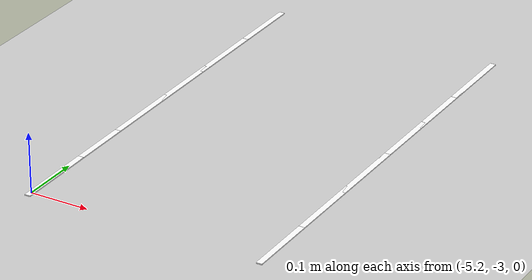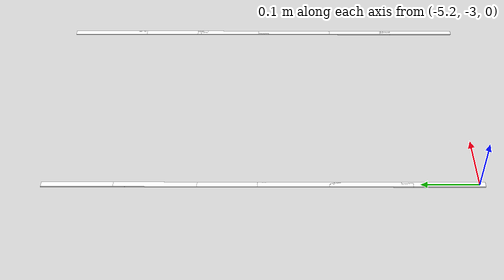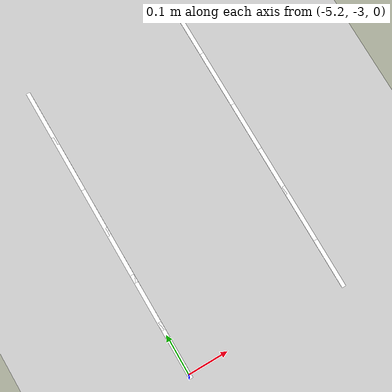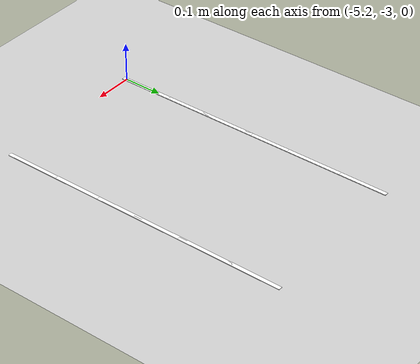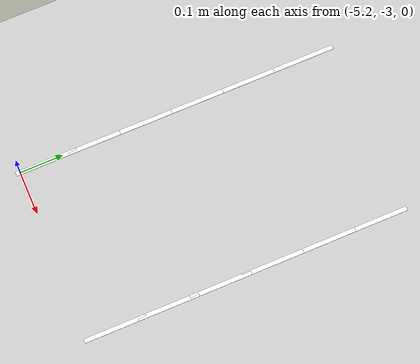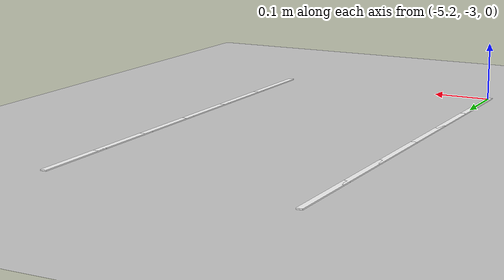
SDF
<sdf version="1.7">
 <world name="default">
  <model name="ground_plane">
   <static>1</static>
   <link name="link">
    <collision name="collision">
     <geometry><plane><normal>0 0 1</normal><size>100 100</size></plane></geometry>
     <surface>
      <contact><collide_bitmask>65535</collide_bitmask></contact>
      <friction><ode><mu>100</mu><mu2>50</mu2></ode></friction>
     </surface>
    </collision>
    <visual name="visual">
     <cast_shadows>0</cast_shadows>
     <geometry><plane><normal>0 0 1</normal><size>100 100</size></plane></geometry>
     <material>
      <script><uri>file://media/materials/scripts/gazebo.material</uri><name>Gazebo/Grey</name></script>
     </material>
    </visual>
   </link>
  </model>
  <model name="lane_line_left_343">
   <static>1</static>
   <link name="link">
    <pose>0 0 -0.004 0 -0 0</pose>
    <visual name="visual">
     <geometry><box><size>0.1424 0.01 0.01</size></box></geometry>
     <material><ambient>1 1 1 1</ambient><diffuse>1 1 1 1</diffuse></material>
    </visual>
    <collision name="collision"><geometry><box><size>0.1424 0.01 0.01</size></box></geometry></collision>
   </link>
   <pose>-4.8 -2.32653 0 0 0 -1.5708</pose>
  </model>
  <model name="lane_line_right_343">
   <static>1</static>
   <link name="link">
    <pose>0 0 -0.004 0 -0 0</pose>
    <visual name="visual">
     <geometry><box><size>0.1424 0.01 0.01</size></box></geometry>
     <material><ambient>1 1 1 1</ambient><diffuse>1 1 1 1</diffuse></material>
    </visual>
    <collision name="collision"><geometry><box><size>0.1424 0.01 0.01</size></box></geometry></collision>
   </link>
   <pose>-5.2 -2.32653 0 0 0 -1.5708</pose>
  </model>
  <model name="lane_line_left_344">
   <static>1</static>
   <link name="link">
    <pose>0 0 -0.004 0 -0 0</pose>
    <visual name="visual">
     <geometry><box><size>0.1424 0.01 0.01</size></box></geometry>
     <material><ambient>1 1 1 1</ambient><diffuse>1 1 1 1</diffuse></material>
    </visual>
    <collision name="collision"><geometry><box><size>0.1424 0.01 0.01</size></box></geometry></collision>
   </link>
   <pose>-4.8 -2.44898 0 0 0 -1.5708</pose>
  </model>
  <model name="lane_line_right_344">
   <static>1</static>
   <link name="link">
    <pose>0 0 -0.004 0 -0 0</pose>
    <visual name="visual">
     <geometry><box><size>0.1424 0.01 0.01</size></box></geometry>
     <material><ambient>1 1 1 1</ambient><diffuse>1 1 1 1</diffuse></material>
    </visual>
    <collision name="collision"><geometry><box><size>0.1424 0.01 0.01</size></box></geometry></collision>
   </link>
   <pose>-5.2 -2.44898 0 0 0 -1.5708</pose>
  </model>
  <model name="lane_line_left_345">
   <static>1</static>
   <link name="link">
    <pose>0 0 -0.004 0 -0 0</pose>
    <visual name="visual">
     <geometry><box><size>0.1424 0.01 0.01</size></box></geometry>
     <material><ambient>1 1 1 1</ambient><diffuse>1 1 1 1</diffuse></material>
    </visual>
    <collision name="collision"><geometry><box><size>0.1424 0.01 0.01</size></box></geometry></collision>
   </link>
   <pose>-4.8 -2.57143 0 0 0 -1.5708</pose>
  </model>
  <model name="lane_line_right_345">
   <static>1</static>
   <link name="link">
    <pose>0 0 -0.004 0 -0 0</pose>
    <visual name="visual">
     <geometry><box><size>0.1424 0.01 0.01</size></box></geometry>
     <material><ambient>1 1 1 1</ambient><diffuse>1 1 1 1</diffuse></material>
    </visual>
    <collision name="collision"><geometry><box><size>0.1424 0.01 0.01</size></box></geometry></collision>
   </link>
   <pose>-5.2 -2.57143 0 0 0 -1.5708</pose>
  </model>
  <model name="lane_line_left_346">
   <static>1</static>
   <link name="link">
    <pose>0 0 -0.004 0 -0 0</pose>
    <visual name="visual">
     <geometry><box><size>0.1424 0.01 0.01</size></box></geometry>
     <material><ambient>1 1 1 1</ambient><diffuse>1 1 1 1</diffuse></material>
    </visual>
    <collision name="collision"><geometry><box><size>0.1424 0.01 0.01</size></box></geometry></collision>
   </link>
   <pose>-4.8 -2.69388 0 0 0 -1.5708</pose>
  </model>
  <model name="lane_line_right_346">
   <static>1</static>
   <link name="link">
    <pose>0 0 -0.004 0 -0 0</pose>
    <visual name="visual">
     <geometry><box><size>0.1424 0.01 0.01</size></box></geometry>
     <material><ambient>1 1 1 1</ambient><diffuse>1 1 1 1</diffuse></material>
    </visual>
    <collision name="collision"><geometry><box><size>0.1424 0.01 0.01</size></box></geometry></collision>
   </link>
   <pose>-5.2 -2.69388 0 0 0 -1.5708</pose>
  </model>
  <model name="lane_line_left_347">
   <static>1</static>
   <link name="link">
    <pose>0 0 -0.004 0 -0 0</pose>
    <visual name="visual">
     <geometry><box><size>0.1424 0.01 0.01</size></box></geometry>
     <material><ambient>1 1 1 1</ambient><diffuse>1 1 1 1</diffuse></material>
    </visual>
    <collision name="collision"><geometry><box><size>0.1424 0.01 0.01</size></box></geometry></collision>
   </link>
   <pose>-4.8 -2.81633 0 0 0 -1.5708</pose>
  </model>
  <model name="lane_line_right_347">
   <static>1</static>
   <link name="link">
    <pose>0 0 -0.004 0 -0 0</pose>
    <visual name="visual">
     <geometry><box><size>0.1424 0.01 0.01</size></box></geometry>
     <material><ambient>1 1 1 1</ambient><diffuse>1 1 1 1</diffuse></material>
    </visual>
    <collision name="collision"><geometry><box><size>0.1424 0.01 0.01</size></box></geometry></collision>
   </link>
   <pose>-5.2 -2.81633 0 0 0 -1.5708</pose>
  </model>
  <model name="lane_line_left_348">
   <static>1</static>
   <link name="link">
    <pose>0 0 -0.004 0 -0 0</pose>
    <visual name="visual">
     <geometry><box><size>0.1424 0.01 0.01</size></box></geometry>
     <material><ambient>1 1 1 1</ambient><diffuse>1 1 1 1</diffuse></material>
    </visual>
    <collision name="collision"><geometry><box><size>0.1424 0.01 0.01</size></box></geometry></collision>
   </link>
   <pose>-4.8 -2.93878 0 0 0 -1.5708</pose>
  </model>
  <model name="lane_line_right_348">
   <static>1</static>
   <link name="link">
    <pose>0 0 -0.004 0 -0 0</pose>
    <visual name="visual">
     <geometry><box><size>0.1424 0.01 0.01</size></box></geometry>
     <material><ambient>1 1 1 1</ambient><diffuse>1 1 1 1</diffuse></material>
    </visual>
    <collision name="collision"><geometry><box><size>0.1424 0.01 0.01</size></box></geometry></collision>
   </link>
   <pose>-5.2 -2.93878 0 0 0 -1.5708</pose>
  </model>
 </world>
</sdf>
